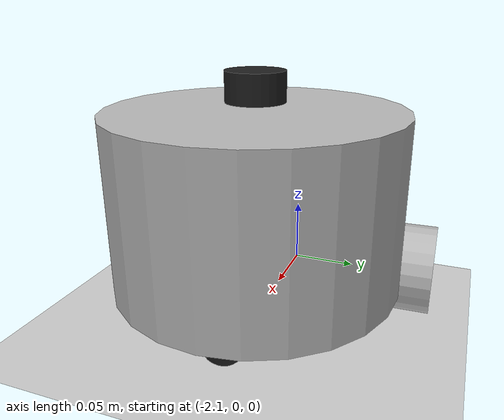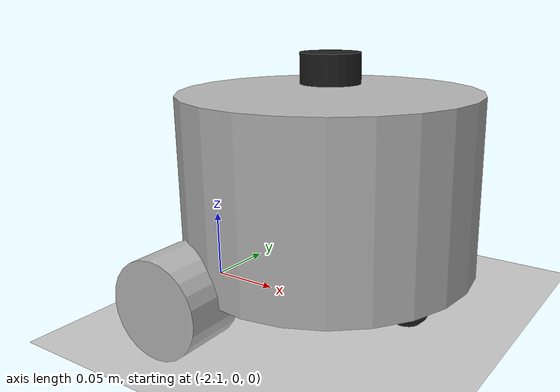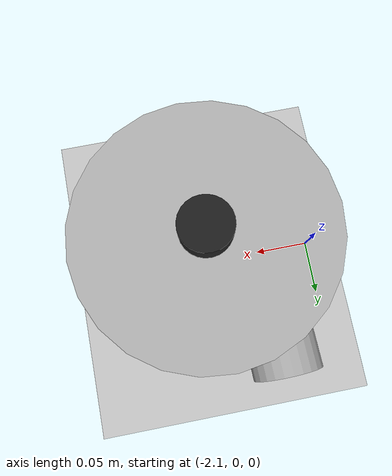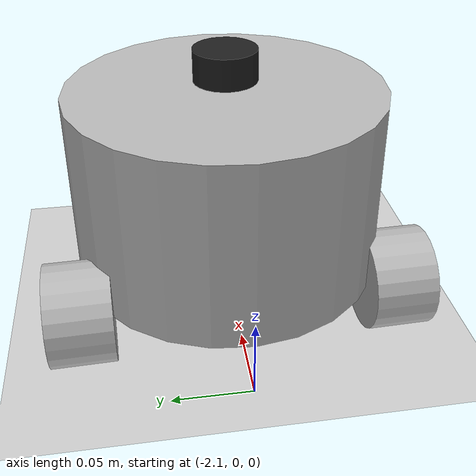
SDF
<sdf version="1.7">
 <world name="default">
  <model name="ground_plane">
   <static>1</static>
   <link name="link">
    <collision name="collision">
     <geometry><plane><normal>0 0 1</normal><size>100 100</size></plane></geometry>
     <surface><friction><ode><mu>100</mu><mu2>50</mu2></ode></friction></surface>
    </collision>
    <visual name="visual">
     <cast_shadows>0</cast_shadows>
     <geometry><plane><normal>0 0 1</normal><size>100 100</size></plane></geometry>
     <material>
      <script><uri>file://media/materials/scripts/gazebo.material</uri><name>Gazebo/Grey</name></script>
     </material>
    </visual>
   </link>
  </model>
  <light name="sun" type="directional">
   <pose>0 0 10 0 -0 0</pose>
   <diffuse>0.8 0.8 0.8 1</diffuse>
   <specular>0.2 0.2 0.2 1</specular>
   <attenuation>
    <range>1000</range>
    <constant>0.9</constant>
    <linear>0.01</linear>
    <quadratic>0.001</quadratic>
   </attenuation>
   <direction>-0.5 0.1 -0.9</direction>
   <spot><inner_angle>0</inner_angle><outer_angle>0</outer_angle><falloff>0</falloff></spot>
  </light>
  <scene><shadows>0</shadows><ambient>0.4 0.4 0.4 1</ambient><background>0.7 0.7 0.7 1</background></scene>
  <physics type="ode">
   <real_time_update_rate>1000</real_time_update_rate>
   <max_step_size>0.001</max_step_size>
   <real_time_factor>1</real_time_factor>
   <ode>
    <solver>
     <type>quick</type>
     <iters>150</iters>
     <precon_iters>0</precon_iters>
     <sor>1.4</sor>
     <use_dynamic_moi_rescaling>1</use_dynamic_moi_rescaling>
    </solver>
    <constraints>
     <cfm>1e-05</cfm>
     <erp>0.2</erp>
     <contact_max_correcting_vel>2000</contact_max_correcting_vel>
     <contact_surface_layer>0.01</contact_surface_layer>
    </constraints>
   </ode>
  </physics>
  <gravity>0 0 -9.8</gravity>
  <magnetic_field>6e-06 2.3e-05 -4.2e-05</magnetic_field>
  <atmosphere type="adiabatic"/>
  <audio><device>default</device></audio>
  <spherical_coordinates>
   <surface_model>EARTH_WGS84</surface_model>
   <latitude_deg>0</latitude_deg>
   <longitude_deg>0</longitude_deg>
   <elevation>0</elevation>
   <heading_deg>0</heading_deg>
  </spherical_coordinates>
  <model name="kkbot">
   <link name="base_footprint">
    <inertial>
     <pose>0.002857 0 0.111 0 -0 0</pose>
     <mass>0.42</mass>
     <inertia>
      <ixx>0.00132845</ixx>
      <ixy>0</ixy>
      <ixz>0.000114</ixz>
      <iyy>0.00166369</iyy>
      <iyz>-7.55405e-20</iyz>
      <izz>0.000830619</izz>
     </inertia>
    </inertial>
    <collision name="base_footprint_fixed_joint_lump__base_link_collision">
     <pose>0 0 0.092 0 -0 0</pose>
     <geometry><cylinder><length>0.12</length><radius>0.1</radius></cylinder></geometry>
    </collision>
    <collision name="base_footprint_fixed_joint_lump__caster_link_collision_1">
     <pose>0.06 0 0.016 0 -0 0</pose>
     <geometry><sphere><radius>0.016</radius></sphere></geometry>
     <surface>
      <contact><ode><kp>1e+06</kp><kd>10</kd></ode></contact>
      <friction><ode><mu>0</mu><mu2>0</mu2></ode></friction>
     </surface>
    </collision>
    <collision name="base_footprint_fixed_joint_lump__imu_link_collision_2">
     <pose>0 0 0.112 0 -0 0</pose>
     <geometry><box><size>0.02 0.02 0.02</size></box></geometry>
    </collision>
    <collision name="base_footprint_fixed_joint_lump__laser_link_collision_3">
     <pose>0 0 0.167 0 -0 0</pose>
     <geometry><cylinder><length>0.02</length><radius>0.02</radius></cylinder></geometry>
    </collision>
    <visual name="base_footprint_fixed_joint_lump__base_link_visual">
     <pose>0 0 0.092 0 -0 0</pose>
     <geometry><cylinder><length>0.12</length><radius>0.1</radius></cylinder></geometry>
    </visual>
    <visual name="base_footprint_fixed_joint_lump__caster_link_visual_1">
     <pose>0.06 0 0.016 0 -0 0</pose>
     <geometry><sphere><radius>0.016</radius></sphere></geometry>
     <material>
      <script><name>Gazebo/Black</name><uri>file://media/materials/scripts/gazebo.material</uri></script>
     </material>
    </visual>
    <visual name="base_footprint_fixed_joint_lump__imu_link_visual_2">
     <pose>0 0 0.112 0 -0 0</pose>
     <geometry><box><size>0.02 0.02 0.02</size></box></geometry>
    </visual>
    <visual name="base_footprint_fixed_joint_lump__laser_link_visual_3">
     <pose>0 0 0.167 0 -0 0</pose>
     <geometry><cylinder><length>0.02</length><radius>0.02</radius></cylinder></geometry>
     <material>
      <script><name>Gazebo/Black</name><uri>file://media/materials/scripts/gazebo.material</uri></script>
     </material>
    </visual>
    <sensor name="imu_sensor" type="imu">
     <plugin name="imu_plugin" filename="libgazebo_ros_imu_sensor.so">
      <ros><namespace>/</namespace><remapping>~/out:=imu</remapping></ros>
      <initial_orientation_as_reference>0</initial_orientation_as_reference>
     </plugin>
     <always_on>1</always_on>
     <update_rate>100</update_rate>
     <visualize>1</visualize>
     <imu>
      <angular_velocity>
       <x>
        <noise type="gaussian">
         <mean>0</mean>
         <stddev>0.0002</stddev>
         <bias_mean>7.5e-06</bias_mean>
         <bias_stddev>8e-07</bias_stddev>
        </noise>
       </x>
       <y>
        <noise type="gaussian">
         <mean>0</mean>
         <stddev>0.0002</stddev>
         <bias_mean>7.5e-06</bias_mean>
         <bias_stddev>8e-07</bias_stddev>
        </noise>
       </y>
       <z>
        <noise type="gaussian">
         <mean>0</mean>
         <stddev>0.0002</stddev>
         <bias_mean>7.5e-06</bias_mean>
         <bias_stddev>8e-07</bias_stddev>
        </noise>
       </z>
      </angular_velocity>
      <linear_acceleration>
       <x>
        <noise type="gaussian">
         <mean>0</mean>
         <stddev>0.017</stddev>
         <bias_mean>0.1</bias_mean>
         <bias_stddev>0.001</bias_stddev>
        </noise>
       </x>
       <y>
        <noise type="gaussian">
         <mean>0</mean>
         <stddev>0.017</stddev>
         <bias_mean>0.1</bias_mean>
         <bias_stddev>0.001</bias_stddev>
        </noise>
       </y>
       <z>
        <noise type="gaussian">
         <mean>0</mean>
         <stddev>0.017</stddev>
         <bias_mean>0.1</bias_mean>
         <bias_stddev>0.001</bias_stddev>
        </noise>
       </z>
      </linear_acceleration>
     </imu>
     <pose>0 0 0.112 0 -0 0</pose>
    </sensor>
    <sensor name="laser_sensor" type="ray">
     <always_on>1</always_on>
     <visualize>1</visualize>
     <update_rate>5</update_rate>
     <ray>
      <scan>
       <horizontal>
        <samples>360</samples>
        <resolution>1</resolution>
        <min_angle>0</min_angle>
        <max_angle>6.28</max_angle>
       </horizontal>
       <vertical><samples>1</samples><min_angle>0</min_angle><max_angle>0</max_angle></vertical>
      </scan>
      <range><min>0.12</min><max>8</max><resolution>0.015</resolution></range>
      <noise><type>gaussian</type><mean>0</mean><stddev>0.01</stddev></noise>
     </ray>
     <plugin name="laserscan" filename="libgazebo_ros_ray_sensor.so">
      <ros><remapping>~/out:=scan</remapping></ros>
      <output_type>sensor_msgs/LaserScan</output_type>
      <frame_name>laser_link</frame_name>
     </plugin>
     <pose>0 0 0.167 0 -0 0</pose>
    </sensor>
   </link>
   <joint name="left_wheel_joint" type="revolute">
    <pose relative_to="base_footprint">-0.05 0.1 0.032 0 -0 0</pose>
    <parent>base_footprint</parent>
    <child>left_wheel_link</child>
    <axis>
     <xyz>0 1 0</xyz>
     <limit><lower>-1e+16</lower><upper>1e+16</upper></limit>
     <dynamics><spring_reference>0</spring_reference><spring_stiffness>0</spring_stiffness></dynamics>
    </axis>
   </joint>
   <link name="left_wheel_link">
    <pose relative_to="left_wheel_joint">0 0 0 0 -0 0</pose>
    <inertial>
     <pose>0 0 0 1.5708 -0 0</pose>
     <mass>0.2</mass>
     <inertia>
      <ixx>7.78667e-05</ixx>
      <ixy>0</ixy>
      <ixz>0</ixz>
      <iyy>7.78667e-05</iyy>
      <iyz>0</iyz>
      <izz>0.0001024</izz>
     </inertia>
    </inertial>
    <collision name="left_wheel_link_collision">
     <pose>0 0 0 1.5708 -0 0</pose>
     <geometry><cylinder><length>0.04</length><radius>0.032</radius></cylinder></geometry>
    </collision>
    <visual name="left_wheel_link_visual">
     <pose>0 0 0 1.5708 -0 0</pose>
     <geometry><cylinder><length>0.04</length><radius>0.032</radius></cylinder></geometry>
    </visual>
   </link>
   <joint name="right_wheel_joint" type="revolute">
    <pose relative_to="base_footprint">-0.05 -0.1 0.032 0 -0 0</pose>
    <parent>base_footprint</parent>
    <child>right_wheel_link</child>
    <axis>
     <xyz>0 1 0</xyz>
     <limit><lower>-1e+16</lower><upper>1e+16</upper></limit>
     <dynamics><spring_reference>0</spring_reference><spring_stiffness>0</spring_stiffness></dynamics>
    </axis>
   </joint>
   <link name="right_wheel_link">
    <pose relative_to="right_wheel_joint">0 0 0 0 -0 0</pose>
    <inertial>
     <pose>0 0 0 1.5708 -0 0</pose>
     <mass>0.2</mass>
     <inertia>
      <ixx>7.78667e-05</ixx>
      <ixy>0</ixy>
      <ixz>0</ixz>
      <iyy>7.78667e-05</iyy>
      <iyz>0</iyz>
      <izz>0.0001024</izz>
     </inertia>
    </inertial>
    <collision name="right_wheel_link_collision">
     <pose>0 0 0 1.5708 -0 0</pose>
     <geometry><cylinder><length>0.04</length><radius>0.032</radius></cylinder></geometry>
    </collision>
    <visual name="right_wheel_link_visual">
     <pose>0 0 0 1.5708 -0 0</pose>
     <geometry><cylinder><length>0.04</length><radius>0.032</radius></cylinder></geometry>
    </visual>
   </link>
   <static>0</static>
   <plugin name="diff_drive" filename="libgazebo_ros_diff_drive.so">
    <ros><namespace>/</namespace><remapping>cmd_vel:=cmd_vel</remapping><remapping>odom:=odom</remapping></ros>
    <update_rate>30</update_rate>
    <left_joint>left_wheel_joint</left_joint>
    <right_joint>right_wheel_joint</right_joint>
    <wheel_separation>0.2</wheel_separation>
    <wheel_diameter>0.065</wheel_diameter>
    <max_wheel_torque>20</max_wheel_torque>
    <max_wheel_acceleration>1.0</max_wheel_acceleration>
    <publish_odom>1</publish_odom>
    <publish_odom_tf>1</publish_odom_tf>
    <publish_wheel_tf>0</publish_wheel_tf>
    <odometry_frame>odom</odometry_frame>
    <robot_base_frame>base_footprint</robot_base_frame>
   </plugin>
   <plugin name="kkbot_joint_state" filename="libgazebo_ros_joint_state_publisher.so">
    <ros><remapping>~/out:=joint_states</remapping></ros>
    <update_rate>30</update_rate>
    <joint_name>right_wheel_joint</joint_name>
    <joint_name>left_wheel_joint</joint_name>
   </plugin>
   <pose>-1.99653 0.001536 -1e-06 -1e-06 1.8e-05 0.029169</pose>
  </model>
 </world>
</sdf>
